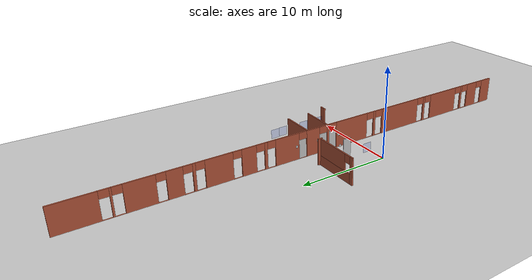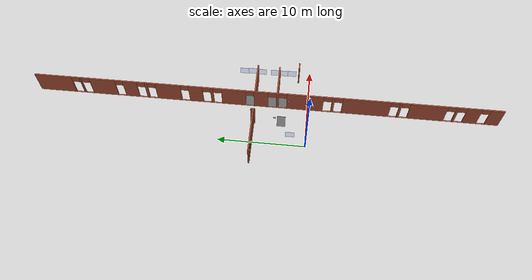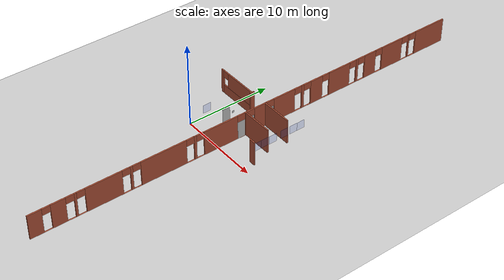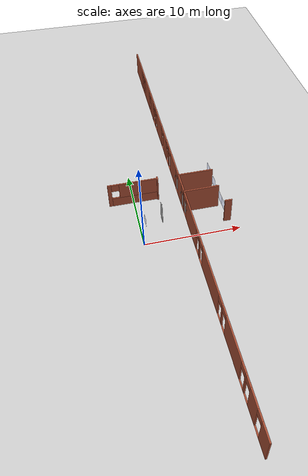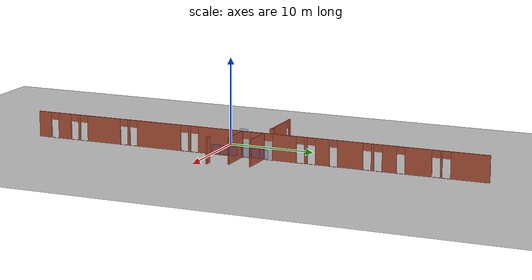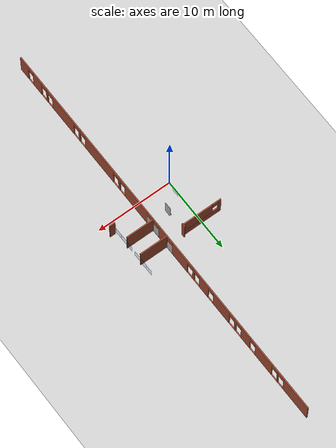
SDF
<sdf version="1.6">
 <world name="default">
  <model name="ground_plane">
   <static>1</static>
   <link name="link">
    <collision name="collision">
     <geometry><plane><normal>0 0 1</normal><size>100 100</size></plane></geometry>
     <surface><friction><ode><mu>100</mu><mu2>50</mu2></ode></friction></surface>
    </collision>
    <visual name="visual">
     <cast_shadows>0</cast_shadows>
     <geometry><plane><normal>0 0 1</normal><size>100 100</size></plane></geometry>
     <material>
      <script><uri>file://media/materials/scripts/gazebo.material</uri><name>Gazebo/Grey</name></script>
     </material>
    </visual>
   </link>
  </model>
  <model name="UNFRGS_INF_-_Predio_73">
   <pose>-0.02513 1.0401 -0.009 0 -0 0</pose>
   <link name="Wall_162">
    <pose>0.020867 5.08778 0 0 -0 0</pose>
    <visual name="Wall_162_Visual_0">
     <pose>-2.42649 0 1.48 0 -0 0</pose>
     <geometry><box><size>0.397012 0.15 2.96</size></box></geometry>
     <material>
      <script><uri>file://media/materials/scripts/gazebo.material</uri><name>Gazebo/Bricks</name></script>
      <ambient>0.929412 1 0.760784 1</ambient>
     </material>
     <meta><layer>0</layer></meta>
    </visual>
    <collision name="Wall_162_Collision_0">
     <geometry><box><size>0.397012 0.15 2.96</size></box></geometry>
     <pose>-2.42649 0 1.48 0 -0 0</pose>
    </collision>
    <visual name="Wall_162_Visual_1">
     <pose>0.198506 0 0.55 0 -0 0</pose>
     <geometry><box><size>4.85299 0.15 1.11</size></box></geometry>
     <material>
      <script><uri>file://media/materials/scripts/gazebo.material</uri><name>Gazebo/Bricks</name></script>
      <ambient>0.929412 1 0.760784 1</ambient>
     </material>
     <meta><layer>0</layer></meta>
    </visual>
    <collision name="Wall_162_Collision_1">
     <geometry><box><size>4.85299 0.15 1.11</size></box></geometry>
     <pose>0.198506 0 0.55 0 -0 0</pose>
    </collision>
    <visual name="Wall_162_Visual_2">
     <pose>0.598506 0 2.03 0 -0 0</pose>
     <geometry><box><size>4.05299 0.15 1.86</size></box></geometry>
     <material>
      <script><uri>file://media/materials/scripts/gazebo.material</uri><name>Gazebo/Bricks</name></script>
      <ambient>0.929412 1 0.760784 1</ambient>
     </material>
     <meta><layer>0</layer></meta>
    </visual>
    <collision name="Wall_162_Collision_2">
     <geometry><box><size>4.05299 0.15 1.86</size></box></geometry>
     <pose>0.598506 0 2.03 0 -0 0</pose>
    </collision>
    <visual name="Wall_162_Visual_3">
     <pose>-1.82799 0 2.53 0 -0 0</pose>
     <geometry><box><size>0.8 0.15 0.86</size></box></geometry>
     <material>
      <script><uri>file://media/materials/scripts/gazebo.material</uri><name>Gazebo/Bricks</name></script>
      <ambient>0.929412 1 0.760784 1</ambient>
     </material>
     <meta><layer>0</layer></meta>
    </visual>
    <collision name="Wall_162_Collision_3">
     <geometry><box><size>0.8 0.15 0.86</size></box></geometry>
     <pose>-1.82799 0 2.53 0 -0 0</pose>
    </collision>
   </link>
   <link name="Wall_165">
    <collision name="Wall_165_Collision">
     <geometry><box><size>3.75 0.15 2.96</size></box></geometry>
     <pose>0 0 1.48 0 -0 0</pose>
    </collision>
    <visual name="Wall_165_Visual">
     <pose>0 0 1.48 0 -0 0</pose>
     <geometry><box><size>3.75 0.15 2.96</size></box></geometry>
     <material>
      <script><uri>file://media/materials/scripts/gazebo.material</uri><name>Gazebo/Bricks</name></script>
      <ambient>0.929412 1 0.760784 1</ambient>
     </material>
     <meta><layer>0</layer></meta>
    </visual>
    <pose>6.83987 5.10678 0 0 -0 0</pose>
   </link>
   <link name="Wall_175">
    <collision name="Wall_175_Collision">
     <geometry><box><size>0.5 0.15 2.96</size></box></geometry>
     <pose>0 0 1.48 0 -0 0</pose>
    </collision>
    <visual name="Wall_175_Visual">
     <pose>0 0 1.48 0 -0 0</pose>
     <geometry><box><size>0.5 0.15 2.96</size></box></geometry>
     <material>
      <script><uri>file://media/materials/scripts/gazebo.material</uri><name>Gazebo/Bricks</name></script>
      <ambient>0.929412 1 0.760784 1</ambient>
     </material>
     <meta><layer>0</layer></meta>
    </visual>
    <pose>2.67687 5.13478 0 0 0 -1.5708</pose>
   </link>
   <link name="Wall_187">
    <collision name="Wall_187_Collision">
     <geometry><box><size>3.75 0.15 2.96</size></box></geometry>
     <pose>0 0 1.48 0 -0 0</pose>
    </collision>
    <visual name="Wall_187_Visual">
     <pose>0 0 1.48 0 -0 0</pose>
     <geometry><box><size>3.75 0.15 2.96</size></box></geometry>
     <material>
      <script><uri>file://media/materials/scripts/gazebo.material</uri><name>Gazebo/Bricks</name></script>
      <ambient>0.929412 1 0.760784 1</ambient>
     </material>
     <meta><layer>0</layer></meta>
    </visual>
    <pose>6.82687 2.55578 0 0 -0 0</pose>
   </link>
   <link name="Wall_58">
    <pose>4.98587 3.87678 0 0 0 -1.5708</pose>
    <visual name="Wall_58_Visual_0">
     <pose>-24.7349 0 1.48 0 -0 0</pose>
     <geometry><box><size>4.28017 0.15 2.96</size></box></geometry>
     <material>
      <script><uri>file://media/materials/scripts/gazebo.material</uri><name>Gazebo/Bricks</name></script>
      <ambient>0.929412 1 0.760784 1</ambient>
     </material>
     <meta><layer>0</layer></meta>
    </visual>
    <collision name="Wall_58_Collision_0">
     <geometry><box><size>4.28017 0.15 2.96</size></box></geometry>
     <pose>-24.7349 0 1.48 0 -0 0</pose>
    </collision>
    <visual name="Wall_58_Visual_1">
     <pose>-21.5568 0 1.48 0 -0 0</pose>
     <geometry><box><size>0.196028 0.15 2.96</size></box></geometry>
     <material>
      <script><uri>file://media/materials/scripts/gazebo.material</uri><name>Gazebo/Bricks</name></script>
      <ambient>0.929412 1 0.760784 1</ambient>
     </material>
     <meta><layer>0</layer></meta>
    </visual>
    <collision name="Wall_58_Collision_1">
     <geometry><box><size>0.196028 0.15 2.96</size></box></geometry>
     <pose>-21.5568 0 1.48 0 -0 0</pose>
    </collision>
    <visual name="Wall_58_Visual_2">
     <pose>-19.0277 0 1.48 0 -0 0</pose>
     <geometry><box><size>2.98229 0.15 2.96</size></box></geometry>
     <material>
      <script><uri>file://media/materials/scripts/gazebo.material</uri><name>Gazebo/Bricks</name></script>
      <ambient>0.929412 1 0.760784 1</ambient>
     </material>
     <meta><layer>0</layer></meta>
    </visual>
    <collision name="Wall_58_Collision_2">
     <geometry><box><size>2.98229 0.15 2.96</size></box></geometry>
     <pose>-19.0277 0 1.48 0 -0 0</pose>
    </collision>
    <visual name="Wall_58_Visual_3">
     <pose>-15.787 0 1.48 0 -0 0</pose>
     <geometry><box><size>1.61905 0.15 2.96</size></box></geometry>
     <material>
      <script><uri>file://media/materials/scripts/gazebo.material</uri><name>Gazebo/Bricks</name></script>
      <ambient>0.929412 1 0.760784 1</ambient>
     </material>
     <meta><layer>0</layer></meta>
    </visual>
    <collision name="Wall_58_Collision_3">
     <geometry><box><size>1.61905 0.15 2.96</size></box></geometry>
     <pose>-15.787 0 1.48 0 -0 0</pose>
    </collision>
    <visual name="Wall_58_Visual_4">
     <pose>-13.8891 0 1.48 0 -0 0</pose>
     <geometry><box><size>0.296693 0.15 2.96</size></box></geometry>
     <material>
      <script><uri>file://media/materials/scripts/gazebo.material</uri><name>Gazebo/Bricks</name></script>
      <ambient>0.929412 1 0.760784 1</ambient>
     </material>
     <meta><layer>0</layer></meta>
    </visual>
    <collision name="Wall_58_Collision_4">
     <geometry><box><size>0.296693 0.15 2.96</size></box></geometry>
     <pose>-13.8891 0 1.48 0 -0 0</pose>
    </collision>
    <visual name="Wall_58_Visual_5">
     <pose>-11.347 0 1.48 0 -0 0</pose>
     <geometry><box><size>2.9275 0.15 2.96</size></box></geometry>
     <material>
      <script><uri>file://media/materials/scripts/gazebo.material</uri><name>Gazebo/Bricks</name></script>
      <ambient>0.929412 1 0.760784 1</ambient>
     </material>
     <meta><layer>0</layer></meta>
    </visual>
    <collision name="Wall_58_Collision_5">
     <geometry><box><size>2.9275 0.15 2.96</size></box></geometry>
     <pose>-11.347 0 1.48 0 -0 0</pose>
    </collision>
    <visual name="Wall_58_Visual_6">
     <pose>-8.13374 0 1.48 0 -0 0</pose>
     <geometry><box><size>1.61905 0.15 2.96</size></box></geometry>
     <material>
      <script><uri>file://media/materials/scripts/gazebo.material</uri><name>Gazebo/Bricks</name></script>
      <ambient>0.929412 1 0.760784 1</ambient>
     </material>
     <meta><layer>0</layer></meta>
    </visual>
    <collision name="Wall_58_Collision_6">
     <geometry><box><size>1.61905 0.15 2.96</size></box></geometry>
     <pose>-8.13374 0 1.48 0 -0 0</pose>
    </collision>
    <visual name="Wall_58_Visual_7">
     <pose>-6.22641 0 1.48 0 -0 0</pose>
     <geometry><box><size>0.31561 0.15 2.96</size></box></geometry>
     <material>
      <script><uri>file://media/materials/scripts/gazebo.material</uri><name>Gazebo/Bricks</name></script>
      <ambient>0.929412 1 0.760784 1</ambient>
     </material>
     <meta><layer>0</layer></meta>
    </visual>
    <collision name="Wall_58_Collision_7">
     <geometry><box><size>0.31561 0.15 2.96</size></box></geometry>
     <pose>-6.22641 0 1.48 0 -0 0</pose>
    </collision>
    <visual name="Wall_58_Visual_8">
     <pose>-3.72117 0 1.48 0 -0 0</pose>
     <geometry><box><size>2.81487 0.15 2.96</size></box></geometry>
     <material>
      <script><uri>file://media/materials/scripts/gazebo.material</uri><name>Gazebo/Bricks</name></script>
      <ambient>0.929412 1 0.760784 1</ambient>
     </material>
     <meta><layer>0</layer></meta>
    </visual>
    <collision name="Wall_58_Collision_8">
     <geometry><box><size>2.81487 0.15 2.96</size></box></geometry>
     <pose>-3.72117 0 1.48 0 -0 0</pose>
    </collision>
    <visual name="Wall_58_Visual_9">
     <pose>-0.558227 0 1.48 0 -0 0</pose>
     <geometry><box><size>1.63101 0.15 2.96</size></box></geometry>
     <material>
      <script><uri>file://media/materials/scripts/gazebo.material</uri><name>Gazebo/Bricks</name></script>
      <ambient>0.929412 1 0.760784 1</ambient>
     </material>
     <meta><layer>0</layer></meta>
    </visual>
    <collision name="Wall_58_Collision_9">
     <geometry><box><size>1.63101 0.15 2.96</size></box></geometry>
     <pose>-0.558227 0 1.48 0 -0 0</pose>
    </collision>
    <visual name="Wall_58_Visual_10">
     <pose>1.33715 0 1.48 0 -0 0</pose>
     <geometry><box><size>0.279736 0.15 2.96</size></box></geometry>
     <material>
      <script><uri>file://media/materials/scripts/gazebo.material</uri><name>Gazebo/Bricks</name></script>
      <ambient>0.929412 1 0.760784 1</ambient>
     </material>
     <meta><layer>0</layer></meta>
    </visual>
    <collision name="Wall_58_Collision_10">
     <geometry><box><size>0.279736 0.15 2.96</size></box></geometry>
     <pose>1.33715 0 1.48 0 -0 0</pose>
    </collision>
    <visual name="Wall_58_Visual_11">
     <pose>4.524 0 1.48 0 -0 0</pose>
     <geometry><box><size>4.21398 0.15 2.96</size></box></geometry>
     <material>
      <script><uri>file://media/materials/scripts/gazebo.material</uri><name>Gazebo/Bricks</name></script>
      <ambient>0.929412 1 0.760784 1</ambient>
     </material>
     <meta><layer>0</layer></meta>
    </visual>
    <collision name="Wall_58_Collision_11">
     <geometry><box><size>4.21398 0.15 2.96</size></box></geometry>
     <pose>4.524 0 1.48 0 -0 0</pose>
    </collision>
    <visual name="Wall_58_Visual_12">
     <pose>7.71684 0 1.48 0 -0 0</pose>
     <geometry><box><size>0.291694 0.15 2.96</size></box></geometry>
     <material>
      <script><uri>file://media/materials/scripts/gazebo.material</uri><name>Gazebo/Bricks</name></script>
      <ambient>0.929412 1 0.760784 1</ambient>
     </material>
     <meta><layer>0</layer></meta>
    </visual>
    <collision name="Wall_58_Collision_12">
     <geometry><box><size>0.291694 0.15 2.96</size></box></geometry>
     <pose>7.71684 0 1.48 0 -0 0</pose>
    </collision>
    <visual name="Wall_58_Visual_13">
     <pose>11.534 0 1.48 0 -0 0</pose>
     <geometry><box><size>5.46263 0.15 2.96</size></box></geometry>
     <material>
      <script><uri>file://media/materials/scripts/gazebo.material</uri><name>Gazebo/Bricks</name></script>
      <ambient>0.929412 1 0.760784 1</ambient>
     </material>
     <meta><layer>0</layer></meta>
    </visual>
    <collision name="Wall_58_Collision_13">
     <geometry><box><size>5.46263 0.15 2.96</size></box></geometry>
     <pose>11.534 0 1.48 0 -0 0</pose>
    </collision>
    <visual name="Wall_58_Visual_14">
     <pose>15.3342 0 1.48 0 -0 0</pose>
     <geometry><box><size>0.277777 0.15 2.96</size></box></geometry>
     <material>
      <script><uri>file://media/materials/scripts/gazebo.material</uri><name>Gazebo/Bricks</name></script>
      <ambient>0.929412 1 0.760784 1</ambient>
     </material>
     <meta><layer>0</layer></meta>
    </visual>
    <collision name="Wall_58_Collision_14">
     <geometry><box><size>0.277777 0.15 2.96</size></box></geometry>
     <pose>15.3342 0 1.48 0 -0 0</pose>
    </collision>
    <visual name="Wall_58_Visual_15">
     <pose>18.5006 0 1.48 0 -0 0</pose>
     <geometry><box><size>4.19506 0.15 2.96</size></box></geometry>
     <material>
      <script><uri>file://media/materials/scripts/gazebo.material</uri><name>Gazebo/Bricks</name></script>
      <ambient>0.929412 1 0.760784 1</ambient>
     </material>
     <meta><layer>0</layer></meta>
    </visual>
    <collision name="Wall_58_Collision_15">
     <geometry><box><size>4.19506 0.15 2.96</size></box></geometry>
     <pose>18.5006 0 1.48 0 -0 0</pose>
    </collision>
    <visual name="Wall_58_Visual_16">
     <pose>21.6685 0 1.48 0 -0 0</pose>
     <geometry><box><size>0.260678 0.15 2.96</size></box></geometry>
     <material>
      <script><uri>file://media/materials/scripts/gazebo.material</uri><name>Gazebo/Bricks</name></script>
      <ambient>0.929412 1 0.760784 1</ambient>
     </material>
     <meta><layer>0</layer></meta>
    </visual>
    <collision name="Wall_58_Collision_16">
     <geometry><box><size>0.260678 0.15 2.96</size></box></geometry>
     <pose>21.6685 0 1.48 0 -0 0</pose>
    </collision>
    <visual name="Wall_58_Visual_17">
     <pose>23.5579 0 1.48 0 -0 0</pose>
     <geometry><box><size>1.63811 0.15 2.96</size></box></geometry>
     <material>
      <script><uri>file://media/materials/scripts/gazebo.material</uri><name>Gazebo/Bricks</name></script>
      <ambient>0.929412 1 0.760784 1</ambient>
     </material>
     <meta><layer>0</layer></meta>
    </visual>
    <collision name="Wall_58_Collision_17">
     <geometry><box><size>1.63811 0.15 2.96</size></box></geometry>
     <pose>23.5579 0 1.48 0 -0 0</pose>
    </collision>
    <visual name="Wall_58_Visual_18">
     <pose>26.096 0 1.48 0 -0 0</pose>
     <geometry><box><size>1.55804 0.15 2.96</size></box></geometry>
     <material>
      <script><uri>file://media/materials/scripts/gazebo.material</uri><name>Gazebo/Bricks</name></script>
      <ambient>0.929412 1 0.760784 1</ambient>
     </material>
     <meta><layer>0</layer></meta>
    </visual>
    <collision name="Wall_58_Collision_18">
     <geometry><box><size>1.55804 0.15 2.96</size></box></geometry>
     <pose>26.096 0 1.48 0 -0 0</pose>
    </collision>
    <visual name="Wall_58_Visual_19">
     <pose>-22.1248 0 0 0 -0 0</pose>
     <geometry><box><size>0.94 0.15 0.001</size></box></geometry>
     <material>
      <script><uri>file://media/materials/scripts/gazebo.material</uri><name>Gazebo/Bricks</name></script>
      <ambient>0.929412 1 0.760784 1</ambient>
     </material>
     <meta><layer>0</layer></meta>
    </visual>
    <collision name="Wall_58_Collision_19">
     <geometry><box><size>0.94 0.15 0.001</size></box></geometry>
     <pose>-22.1248 0 0 0 -0 0</pose>
    </collision>
    <visual name="Wall_58_Visual_20">
     <pose>-20.9888 0 0 0 -0 0</pose>
     <geometry><box><size>0.94 0.15 0.001</size></box></geometry>
     <material>
      <script><uri>file://media/materials/scripts/gazebo.material</uri><name>Gazebo/Bricks</name></script>
      <ambient>0.929412 1 0.760784 1</ambient>
     </material>
     <meta><layer>0</layer></meta>
    </visual>
    <collision name="Wall_58_Collision_20">
     <geometry><box><size>0.94 0.15 0.001</size></box></geometry>
     <pose>-20.9888 0 0 0 -0 0</pose>
    </collision>
    <visual name="Wall_58_Visual_21">
     <pose>-17.0665 0 0 0 -0 0</pose>
     <geometry><box><size>0.94 0.15 0.001</size></box></geometry>
     <material>
      <script><uri>file://media/materials/scripts/gazebo.material</uri><name>Gazebo/Bricks</name></script>
      <ambient>0.929412 1 0.760784 1</ambient>
     </material>
     <meta><layer>0</layer></meta>
    </visual>
    <collision name="Wall_58_Collision_21">
     <geometry><box><size>0.94 0.15 0.001</size></box></geometry>
     <pose>-17.0665 0 0 0 -0 0</pose>
    </collision>
    <visual name="Wall_58_Visual_22">
     <pose>-14.5075 0 0 0 -0 0</pose>
     <geometry><box><size>0.94 0.15 0.001</size></box></geometry>
     <material>
      <script><uri>file://media/materials/scripts/gazebo.material</uri><name>Gazebo/Bricks</name></script>
      <ambient>0.929412 1 0.760784 1</ambient>
     </material>
     <meta><layer>0</layer></meta>
    </visual>
    <collision name="Wall_58_Collision_22">
     <geometry><box><size>0.94 0.15 0.001</size></box></geometry>
     <pose>-14.5075 0 0 0 -0 0</pose>
    </collision>
    <visual name="Wall_58_Visual_23">
     <pose>-13.2758 0 0 0 -0 0</pose>
     <geometry><box><size>0.93 0.15 0.001</size></box></geometry>
     <material>
      <script><uri>file://media/materials/scripts/gazebo.material</uri><name>Gazebo/Bricks</name></script>
      <ambient>0.929412 1 0.760784 1</ambient>
     </material>
     <meta><layer>0</layer></meta>
    </visual>
    <collision name="Wall_58_Collision_23">
     <geometry><box><size>0.93 0.15 0.001</size></box></geometry>
     <pose>-13.2758 0 0 0 -0 0</pose>
    </collision>
    <visual name="Wall_58_Visual_24">
     <pose>-9.41327 0 0 0 -0 0</pose>
     <geometry><box><size>0.94 0.15 0.001</size></box></geometry>
     <material>
      <script><uri>file://media/materials/scripts/gazebo.material</uri><name>Gazebo/Bricks</name></script>
      <ambient>0.929412 1 0.760784 1</ambient>
     </material>
     <meta><layer>0</layer></meta>
    </visual>
    <collision name="Wall_58_Collision_24">
     <geometry><box><size>0.94 0.15 0.001</size></box></geometry>
     <pose>-9.41327 0 0 0 -0 0</pose>
    </collision>
    <visual name="Wall_58_Visual_25">
     <pose>-6.85422 0 0 0 -0 0</pose>
     <geometry><box><size>0.94 0.15 0.001</size></box></geometry>
     <material>
      <script><uri>file://media/materials/scripts/gazebo.material</uri><name>Gazebo/Bricks</name></script>
      <ambient>0.929412 1 0.760784 1</ambient>
     </material>
     <meta><layer>0</layer></meta>
    </visual>
    <collision name="Wall_58_Collision_25">
     <geometry><box><size>0.94 0.15 0.001</size></box></geometry>
     <pose>-6.85422 0 0 0 -0 0</pose>
    </collision>
    <visual name="Wall_58_Visual_26">
     <pose>-5.59861 0 0 0 -0 0</pose>
     <geometry><box><size>0.94 0.15 0.001</size></box></geometry>
     <material>
      <script><uri>file://media/materials/scripts/gazebo.material</uri><name>Gazebo/Bricks</name></script>
      <ambient>0.929412 1 0.760784 1</ambient>
     </material>
     <meta><layer>0</layer></meta>
    </visual>
    <collision name="Wall_58_Collision_26">
     <geometry><box><size>0.94 0.15 0.001</size></box></geometry>
     <pose>-5.59861 0 0 0 -0 0</pose>
    </collision>
    <visual name="Wall_58_Visual_27">
     <pose>-1.84373 0 0 0 -0 0</pose>
     <geometry><box><size>0.94 0.15 0.001</size></box></geometry>
     <material>
      <script><uri>file://media/materials/scripts/gazebo.material</uri><name>Gazebo/Bricks</name></script>
      <ambient>0.929412 1 0.760784 1</ambient>
     </material>
     <meta><layer>0</layer></meta>
    </visual>
    <collision name="Wall_58_Collision_27">
     <geometry><box><size>0.94 0.15 0.001</size></box></geometry>
     <pose>-1.84373 0 0 0 -0 0</pose>
    </collision>
    <visual name="Wall_58_Visual_28">
     <pose>0.727278 0 0 0 -0 0</pose>
     <geometry><box><size>0.94 0.15 0.001</size></box></geometry>
     <material>
      <script><uri>file://media/materials/scripts/gazebo.material</uri><name>Gazebo/Bricks</name></script>
      <ambient>0.929412 1 0.760784 1</ambient>
     </material>
     <meta><layer>0</layer></meta>
    </visual>
    <collision name="Wall_58_Collision_28">
     <geometry><box><size>0.94 0.15 0.001</size></box></geometry>
     <pose>0.727278 0 0 0 -0 0</pose>
    </collision>
    <visual name="Wall_58_Visual_29">
     <pose>1.94701 0 0 0 -0 0</pose>
     <geometry><box><size>0.94 0.15 0.001</size></box></geometry>
     <material>
      <script><uri>file://media/materials/scripts/gazebo.material</uri><name>Gazebo/Bricks</name></script>
      <ambient>0.929412 1 0.760784 1</ambient>
     </material>
     <meta><layer>0</layer></meta>
    </visual>
    <collision name="Wall_58_Collision_29">
     <geometry><box><size>0.94 0.15 0.001</size></box></geometry>
     <pose>1.94701 0 0 0 -0 0</pose>
    </collision>
    <visual name="Wall_58_Visual_30">
     <pose>7.101 0 0 0 -0 0</pose>
     <geometry><box><size>0.94 0.15 0.001</size></box></geometry>
     <material>
      <script><uri>file://media/materials/scripts/gazebo.material</uri><name>Gazebo/Bricks</name></script>
      <ambient>0.929412 1 0.760784 1</ambient>
     </material>
     <meta><layer>0</layer></meta>
    </visual>
    <collision name="Wall_58_Collision_30">
     <geometry><box><size>0.94 0.15 0.001</size></box></geometry>
     <pose>7.101 0 0 0 -0 0</pose>
    </collision>
    <visual name="Wall_58_Visual_31">
     <pose>8.33269 0 0 0 -0 0</pose>
     <geometry><box><size>0.94 0.15 0.001</size></box></geometry>
     <material>
      <script><uri>file://media/materials/scripts/gazebo.material</uri><name>Gazebo/Bricks</name></script>
      <ambient>0.929412 1 0.760784 1</ambient>
     </material>
     <meta><layer>0</layer></meta>
    </visual>
    <collision name="Wall_58_Collision_31">
     <geometry><box><size>0.94 0.15 0.001</size></box></geometry>
     <pose>8.33269 0 0 0 -0 0</pose>
    </collision>
    <visual name="Wall_58_Visual_32">
     <pose>14.7303 0 0 0 -0 0</pose>
     <geometry><box><size>0.93 0.15 0.001</size></box></geometry>
     <material>
      <script><uri>file://media/materials/scripts/gazebo.material</uri><name>Gazebo/Bricks</name></script>
      <ambient>0.929412 1 0.760784 1</ambient>
     </material>
     <meta><layer>0</layer></meta>
    </visual>
    <collision name="Wall_58_Collision_32">
     <geometry><box><size>0.93 0.15 0.001</size></box></geometry>
     <pose>14.7303 0 0 0 -0 0</pose>
    </collision>
    <visual name="Wall_58_Visual_33">
     <pose>15.9381 0 0 0 -0 0</pose>
     <geometry><box><size>0.93 0.15 0.001</size></box></geometry>
     <material>
      <script><uri>file://media/materials/scripts/gazebo.material</uri><name>Gazebo/Bricks</name></script>
      <ambient>0.929412 1 0.760784 1</ambient>
     </material>
     <meta><layer>0</layer></meta>
    </visual>
    <collision name="Wall_58_Collision_33">
     <geometry><box><size>0.93 0.15 0.001</size></box></geometry>
     <pose>15.9381 0 0 0 -0 0</pose>
    </collision>
    <visual name="Wall_58_Visual_34">
     <pose>21.0682 0 0 0 -0 0</pose>
     <geometry><box><size>0.94 0.15 0.001</size></box></geometry>
     <material>
      <script><uri>file://media/materials/scripts/gazebo.material</uri><name>Gazebo/Bricks</name></script>
      <ambient>0.929412 1 0.760784 1</ambient>
     </material>
     <meta><layer>0</layer></meta>
    </visual>
    <collision name="Wall_58_Collision_34">
     <geometry><box><size>0.94 0.15 0.001</size></box></geometry>
     <pose>21.0682 0 0 0 -0 0</pose>
    </collision>
    <visual name="Wall_58_Visual_35">
     <pose>22.2688 0 0 0 -0 0</pose>
     <geometry><box><size>0.94 0.15 0.001</size></box></geometry>
     <material>
      <script><uri>file://media/materials/scripts/gazebo.material</uri><name>Gazebo/Bricks</name></script>
      <ambient>0.929412 1 0.760784 1</ambient>
     </material>
     <meta><layer>0</layer></meta>
    </visual>
    <collision name="Wall_58_Collision_35">
     <geometry><box><size>0.94 0.15 0.001</size></box></geometry>
     <pose>22.2688 0 0 0 -0 0</pose>
    </collision>
    <visual name="Wall_58_Visual_36">
     <pose>24.847 0 0 0 -0 0</pose>
     <geometry><box><size>0.94 0.15 0.001</size></box></geometry>
     <material>
      <script><uri>file://media/materials/scripts/gazebo.material</uri><name>Gazebo/Bricks</name></script>
      <ambient>0.929412 1 0.760784 1</ambient>
     </material>
     <meta><layer>0</layer></meta>
    </visual>
    <collision name="Wall_58_Collision_36">
     <geometry><box><size>0.94 0.15 0.001</size></box></geometry>
     <pose>24.847 0 0 0 -0 0</pose>
    </collision>
    <visual name="Wall_58_Visual_37">
     <pose>-22.1248 0 2.555 0 -0 0</pose>
     <geometry><box><size>0.94 0.15 0.81</size></box></geometry>
     <material>
      <script><uri>file://media/materials/scripts/gazebo.material</uri><name>Gazebo/Bricks</name></script>
      <ambient>0.929412 1 0.760784 1</ambient>
     </material>
     <meta><layer>0</layer></meta>
    </visual>
    <collision name="Wall_58_Collision_37">
     <geometry><box><size>0.94 0.15 0.81</size></box></geometry>
     <pose>-22.1248 0 2.555 0 -0 0</pose>
    </collision>
    <visual name="Wall_58_Visual_38">
     <pose>-20.9888 0 2.555 0 -0 0</pose>
     <geometry><box><size>0.94 0.15 0.81</size></box></geometry>
     <material>
      <script><uri>file://media/materials/scripts/gazebo.material</uri><name>Gazebo/Bricks</name></script>
      <ambient>0.929412 1 0.760784 1</ambient>
     </material>
     <meta><layer>0</layer></meta>
    </visual>
    <collision name="Wall_58_Collision_38">
     <geometry><box><size>0.94 0.15 0.81</size></box></geometry>
     <pose>-20.9888 0 2.555 0 -0 0</pose>
    </collision>
    <visual name="Wall_58_Visual_39">
     <pose>-17.0665 0 2.555 0 -0 0</pose>
     <geometry><box><size>0.94 0.15 0.81</size></box></geometry>
     <material>
      <script><uri>file://media/materials/scripts/gazebo.material</uri><name>Gazebo/Bricks</name></script>
      <ambient>0.929412 1 0.760784 1</ambient>
     </material>
     <meta><layer>0</layer></meta>
    </visual>
    <collision name="Wall_58_Collision_39">
     <geometry><box><size>0.94 0.15 0.81</size></box></geometry>
     <pose>-17.0665 0 2.555 0 -0 0</pose>
    </collision>
    <visual name="Wall_58_Visual_40">
     <pose>-14.5075 0 2.555 0 -0 0</pose>
     <geometry><box><size>0.94 0.15 0.81</size></box></geometry>
     <material>
      <script><uri>file://media/materials/scripts/gazebo.material</uri><name>Gazebo/Bricks</name></script>
      <ambient>0.929412 1 0.760784 1</ambient>
     </material>
     <meta><layer>0</layer></meta>
    </visual>
    <collision name="Wall_58_Collision_40">
     <geometry><box><size>0.94 0.15 0.81</size></box></geometry>
     <pose>-14.5075 0 2.555 0 -0 0</pose>
    </collision>
    <visual name="Wall_58_Visual_41">
     <pose>-13.2758 0 2.555 0 -0 0</pose>
     <geometry><box><size>0.93 0.15 0.81</size></box></geometry>
     <material>
      <script><uri>file://media/materials/scripts/gazebo.material</uri><name>Gazebo/Bricks</name></script>
      <ambient>0.929412 1 0.760784 1</ambient>
     </material>
     <meta><layer>0</layer></meta>
    </visual>
    <collision name="Wall_58_Collision_41">
     <geometry><box><size>0.93 0.15 0.81</size></box></geometry>
     <pose>-13.2758 0 2.555 0 -0 0</pose>
    </collision>
    <visual name="Wall_58_Visual_42">
     <pose>-9.41327 0 2.555 0 -0 0</pose>
     <geometry><box><size>0.94 0.15 0.81</size></box></geometry>
     <material>
      <script><uri>file://media/materials/scripts/gazebo.material</uri><name>Gazebo/Bricks</name></script>
      <ambient>0.929412 1 0.760784 1</ambient>
     </material>
     <meta><layer>0</layer></meta>
    </visual>
    <collision name="Wall_58_Collision_42">
     <geometry><box><size>0.94 0.15 0.81</size></box></geometry>
     <pose>-9.41327 0 2.555 0 -0 0</pose>
    </collision>
    <visual name="Wall_58_Visual_43">
     <pose>-6.85422 0 2.555 0 -0 0</pose>
     <geometry><box><size>0.94 0.15 0.81</size></box></geometry>
     <material>
      <script><uri>file://media/materials/scripts/gazebo.material</uri><name>Gazebo/Bricks</name></script>
      <ambient>0.929412 1 0.760784 1</ambient>
     </material>
     <meta><layer>0</layer></meta>
    </visual>
    <collision name="Wall_58_Collision_43">
     <geometry><box><size>0.94 0.15 0.81</size></box></geometry>
     <pose>-6.85422 0 2.555 0 -0 0</pose>
    </collision>
    <visual name="Wall_58_Visual_44">
     <pose>-5.59861 0 2.555 0 -0 0</pose>
     <geometry><box><size>0.94 0.15 0.81</size></box></geometry>
     <material>
      <script><uri>file://media/materials/scripts/gazebo.material</uri><name>Gazebo/Bricks</name></script>
      <ambient>0.929412 1 0.760784 1</ambient>
     </material>
     <meta><layer>0</layer></meta>
    </visual>
    <collision name="Wall_58_Collision_44">
     <geometry><box><size>0.94 0.15 0.81</size></box></geometry>
     <pose>-5.59861 0 2.555 0 -0 0</pose>
    </collision>
    <visual name="Wall_58_Visual_45">
     <pose>-1.84373 0 2.555 0 -0 0</pose>
     <geometry><box><size>0.94 0.15 0.81</size></box></geometry>
     <material>
      <script><uri>file://media/materials/scripts/gazebo.material</uri><name>Gazebo/Bricks</name></script>
      <ambient>0.929412 1 0.760784 1</ambient>
     </material>
     <meta><layer>0</layer></meta>
    </visual>
    <collision name="Wall_58_Collision_45">
     <geometry><box><size>0.94 0.15 0.81</size></box></geometry>
     <pose>-1.84373 0 2.555 0 -0 0</pose>
    </collision>
    <visual name="Wall_58_Visual_46">
     <pose>0.727278 0 2.555 0 -0 0</pose>
     <geometry><box><size>0.94 0.15 0.81</size></box></geometry>
     <material>
      <script><uri>file://media/materials/scripts/gazebo.material</uri><name>Gazebo/Bricks</name></script>
      <ambient>0.929412 1 0.760784 1</ambient>
     </material>
     <meta><layer>0</layer></meta>
    </visual>
    <collision name="Wall_58_Collision_46">
     <geometry><box><size>0.94 0.15 0.81</size></box></geometry>
     <pose>0.727278 0 2.555 0 -0 0</pose>
    </collision>
    <visual name="Wall_58_Visual_47">
     <pose>1.94701 0 2.555 0 -0 0</pose>
     <geometry><box><size>0.94 0.15 0.81</size></box></geometry>
     <material>
      <script><uri>file://media/materials/scripts/gazebo.material</uri><name>Gazebo/Bricks</name></script>
      <ambient>0.929412 1 0.760784 1</ambient>
     </material>
     <meta><layer>0</layer></meta>
    </visual>
    <collision name="Wall_58_Collision_47">
     <geometry><box><size>0.94 0.15 0.81</size></box></geometry>
     <pose>1.94701 0 2.555 0 -0 0</pose>
    </collision>
    <visual name="Wall_58_Visual_48">
     <pose>7.101 0 2.555 0 -0 0</pose>
     <geometry><box><size>0.94 0.15 0.81</size></box></geometry>
     <material>
      <script><uri>file://media/materials/scripts/gazebo.material</uri><name>Gazebo/Bricks</name></script>
      <ambient>0.929412 1 0.760784 1</ambient>
     </material>
     <meta><layer>0</layer></meta>
    </visual>
    <collision name="Wall_58_Collision_48">
     <geometry><box><size>0.94 0.15 0.81</size></box></geometry>
     <pose>7.101 0 2.555 0 -0 0</pose>
    </collision>
    <visual name="Wall_58_Visual_49">
     <pose>8.33269 0 2.555 0 -0 0</pose>
     <geometry><box><size>0.94 0.15 0.81</size></box></geometry>
     <material>
      <script><uri>file://media/materials/scripts/gazebo.material</uri><name>Gazebo/Bricks</name></script>
      <ambient>0.929412 1 0.760784 1</ambient>
     </material>
     <meta><layer>0</layer></meta>
    </visual>
    <collision name="Wall_58_Collision_49">
     <geometry><box><size>0.94 0.15 0.81</size></box></geometry>
     <pose>8.33269 0 2.555 0 -0 0</pose>
    </collision>
    <visual name="Wall_58_Visual_50">
     <pose>14.7303 0 2.555 0 -0 0</pose>
     <geometry><box><size>0.93 0.15 0.81</size></box></geometry>
     <material>
      <script><uri>file://media/materials/scripts/gazebo.material</uri><name>Gazebo/Bricks</name></script>
      <ambient>0.929412 1 0.760784 1</ambient>
     </material>
     <meta><layer>0</layer></meta>
    </visual>
    <collision name="Wall_58_Collision_50">
     <geometry><box><size>0.93 0.15 0.81</size></box></geometry>
     <pose>14.7303 0 2.555 0 -0 0</pose>
    </collision>
    <visual name="Wall_58_Visual_51">
     <pose>15.9381 0 2.555 0 -0 0</pose>
     <geometry><box><size>0.93 0.15 0.81</size></box></geometry>
     <material>
      <script><uri>file://media/materials/scripts/gazebo.material</uri><name>Gazebo/Bricks</name></script>
      <ambient>0.929412 1 0.760784 1</ambient>
     </material>
     <meta><layer>0</layer></meta>
    </visual>
    <collision name="Wall_58_Collision_51">
     <geometry><box><size>0.93 0.15 0.81</size></box></geometry>
     <pose>15.9381 0 2.555 0 -0 0</pose>
    </collision>
    <visual name="Wall_58_Visual_52">
     <pose>21.0682 0 2.555 0 -0 0</pose>
     <geometry><box><size>0.94 0.15 0.81</size></box></geometry>
     <material>
      <script><uri>file://media/materials/scripts/gazebo.material</uri><name>Gazebo/Bricks</name></script>
      <ambient>0.929412 1 0.760784 1</ambient>
     </material>
     <meta><layer>0</layer></meta>
    </visual>
    <collision name="Wall_58_Collision_52">
     <geometry><box><size>0.94 0.15 0.81</size></box></geometry>
     <pose>21.0682 0 2.555 0 -0 0</pose>
    </collision>
    <visual name="Wall_58_Visual_53">
     <pose>22.2688 0 2.555 0 -0 0</pose>
     <geometry><box><size>0.94 0.15 0.81</size></box></geometry>
     <material>
      <script><uri>file://media/materials/scripts/gazebo.material</uri><name>Gazebo/Bricks</name></script>
      <ambient>0.929412 1 0.760784 1</ambient>
     </material>
     <meta><layer>0</layer></meta>
    </visual>
    <collision name="Wall_58_Collision_53">
     <geometry><box><size>0.94 0.15 0.81</size></box></geometry>
     <pose>22.2688 0 2.555 0 -0 0</pose>
    </collision>
    <visual name="Wall_58_Visual_54">
     <pose>24.847 0 2.555 0 -0 0</pose>
     <geometry><box><size>0.94 0.15 0.81</size></box></geometry>
     <material>
      <script><uri>file://media/materials/scripts/gazebo.material</uri><name>Gazebo/Bricks</name></script>
      <ambient>0.929412 1 0.760784 1</ambient>
     </material>
     <meta><layer>0</layer></meta>
    </visual>
    <collision name="Wall_58_Collision_54">
     <geometry><box><size>0.94 0.15 0.81</size></box></geometry>
     <pose>24.847 0 2.555 0 -0 0</pose>
    </collision>
   </link>
   <link name="Wall_696">
    <collision name="Wall_696_Collision">
     <geometry><box><size>0.75 0.15 2.96</size></box></geometry>
     <pose>0 0 1.48 0 -0 0</pose>
    </collision>
    <visual name="Wall_696_Visual">
     <pose>0 0 1.48 0 -0 0</pose>
     <geometry><box><size>0.75 0.15 2.96</size></box></geometry>
     <material>
      <script><uri>file://media/materials/scripts/gazebo.material</uri><name>Gazebo/Bricks</name></script>
      <ambient>0.498039 0.498039 0.498039 1</ambient>
     </material>
     <meta><layer>0</layer></meta>
    </visual>
    <pose>9.04987 0.289781 0 0 -0 0</pose>
   </link>
   <static>1</static>
  </model>
  <model name="placa_221">
   <pose>4.88 7.5004 1.48209 0 -0 1.57</pose>
   <static>1</static>
   <link name="link">
    <collision name="collision"><geometry><box><size>0.268 0.001 0.268</size></box></geometry></collision>
    <visual name="visual">
     <geometry><box><size>0.268 0.001 0.268</size></box></geometry>
     <material>
      <script>
       <uri>model://Placa_221/Materials/Scripts</uri>
       <uri>model://Placa_221/Materials/Textures</uri>
       <name>TexturaPlaca_221/Image</name>
      </script>
     </material>
    </visual>
   </link>
  </model>
  <model name="placa_223">
   <pose>4.88 4.9 1.48209 0 -0 1.57</pose>
   <static>1</static>
   <link name="link">
    <collision name="collision"><geometry><box><size>0.268 0.001 0.268</size></box></geometry></collision>
    <visual name="visual">
     <geometry><box><size>0.268 0.001 0.268</size></box></geometry>
     <material>
      <script>
       <uri>model://Placa_223/Materials/Scripts</uri>
       <uri>model://Placa_223/Materials/Textures</uri>
       <name>TexturaPlaca_223/Image</name>
      </script>
     </material>
    </visual>
   </link>
  </model>
  <model name="placa_225">
   <pose>2.6 3.7 1.48209 0 -0 1.57</pose>
   <static>1</static>
   <link name="link">
    <collision name="collision"><geometry><box><size>0.268 0.001 0.268</size></box></geometry></collision>
    <visual name="visual">
     <geometry><box><size>0.268 0.001 0.268</size></box></geometry>
     <material>
      <script>
       <uri>model://Placa_225/Materials/Scripts</uri>
       <uri>model://Placa_225/Materials/Textures</uri>
       <name>TexturaPlaca_225/Image</name>
      </script>
     </material>
    </visual>
   </link>
  </model>
  <model name="placa_227">
   <pose>4.88 2.2 1.48209 0 -0 1.57</pose>
   <static>1</static>
   <link name="link">
    <collision name="collision"><geometry><box><size>0.268 0.001 0.268</size></box></geometry></collision>
    <visual name="visual">
     <geometry><box><size>0.268 0.001 0.268</size></box></geometry>
     <material>
      <script>
       <uri>model://Placa_227/Materials/Scripts</uri>
       <uri>model://Placa_227/Materials/Textures</uri>
       <name>TexturaPlaca_227/Image</name>
      </script>
     </material>
    </visual>
   </link>
  </model>
  <model name="PortaInternaDireita_12">
   <pose>5 2.97 1.075 0 -0 1.57</pose>
   <static>1</static>
   <link name="link">
    <collision name="collision"><geometry><box><size>2.15 3.5 0.94</size></box></geometry></collision>
    <visual name="visual">
     <geometry><box><size>0.94 0.035 2.15</size></box></geometry>
     <material>
      <script>
       <uri>model://PortaInternaDireita/materials/scripts</uri>
       <uri>model://PortaInternaDireita/materials/textures</uri>
       <name>TexturaPortaInternaDireita/Image</name>
      </script>
     </material>
    </visual>
   </link>
  </model>
  <model name="PortaInternaEsquerda_15">
   <pose>5 4.2 1.075 0 -0 1.57</pose>
   <static>1</static>
   <link name="link">
    <collision name="collision"><geometry><box><size>2.15 3.5 0.94</size></box></geometry></collision>
    <visual name="visual">
     <geometry><box><size>0.94 0.035 2.15</size></box></geometry>
     <material>
      <script>
       <uri>model://PortaInternaEsquerda/materials/scripts</uri>
       <uri>model://PortaInternaEsquerda/materials/textures</uri>
       <name>TexturaPortaInternaEsquerda/Image</name>
      </script>
     </material>
    </visual>
   </link>
  </model>
  <model name="PortaInternaEsquerda_16">
   <pose>5 6.77 1.075 0 -0 1.57</pose>
   <static>1</static>
   <link name="link">
    <collision name="collision"><geometry><box><size>2.15 3.5 0.94</size></box></geometry></collision>
    <visual name="visual">
     <geometry><box><size>0.94 0.035 2.15</size></box></geometry>
     <material>
      <script>
       <uri>model://PortaInternaEsquerda/materials/scripts</uri>
       <uri>model://PortaInternaEsquerda/materials/textures</uri>
       <name>TexturaPortaInternaEsquerda/Image</name>
      </script>
     </material>
    </visual>
   </link>
  </model>
  <model name="PortaInternaDireita_21">
   <pose>2.43 2.93 1.075 0 -0 1.57</pose>
   <static>1</static>
   <link name="link">
    <collision name="collision"><geometry><box><size>2.15 3.5 0.94</size></box></geometry></collision>
    <visual name="visual">
     <geometry><box><size>0.94 0.035 2.15</size></box></geometry>
     <material>
      <script>
       <uri>model://PortaInternaDireita/materials/scripts</uri>
       <uri>model://PortaInternaDireita/materials/textures</uri>
       <name>TexturaPortaInternaDireita/Image</name>
      </script>
     </material>
    </visual>
   </link>
  </model>
  <model name="vidro_25">
   <pose>8.76298 2.15716 0.360921 0 0 -1.55</pose>
   <link name="Wall_2">
    <collision name="Wall_2_Collision">
     <geometry><box><size>1 0.001 1</size></box></geometry>
     <pose>0 0 1.25 0 -0 0</pose>
    </collision>
    <visual name="Wall_2_Visual">
     <pose>0 0 1.25 0 -0 0</pose>
     <transparency>0.8</transparency>
     <geometry><box><size>1 0.001 1</size></box></geometry>
     <material>
      <script><uri>file://media/materials/scripts/gazebo.material</uri><name>Gazebo/BlueTransparent</name></script>
      <ambient>0.1 0.1 0.1 0.1</ambient>
     </material>
     <meta><layer>0</layer></meta>
    </visual>
    <pose>0 0 0 0 -0 3.14159</pose>
   </link>
   <static>1</static>
  </model>
  <model name="vidro_26">
   <pose>8.74424 3.16328 0.3484 0 0 -1.55</pose>
   <link name="Wall_2">
    <collision name="Wall_2_Collision">
     <geometry><box><size>1 0.001 1</size></box></geometry>
     <pose>0 0 1.25 0 -0 0</pose>
    </collision>
    <visual name="Wall_2_Visual">
     <pose>0 0 1.25 0 -0 0</pose>
     <transparency>0.8</transparency>
     <geometry><box><size>1 0.001 1</size></box></geometry>
     <material>
      <script><uri>file://media/materials/scripts/gazebo.material</uri><name>Gazebo/BlueTransparent</name></script>
      <ambient>0.1 0.1 0.1 0.1</ambient>
     </material>
     <meta><layer>0</layer></meta>
    </visual>
    <pose>0 0 0 0 -0 3.14159</pose>
   </link>
   <static>1</static>
  </model>
  <model name="vidro_27">
   <pose>8.7485 4.16079 0.343325 0 0 -1.55</pose>
   <link name="Wall_2">
    <collision name="Wall_2_Collision">
     <geometry><box><size>1 0.001 1</size></box></geometry>
     <pose>0 0 1.25 0 -0 0</pose>
    </collision>
    <visual name="Wall_2_Visual">
     <pose>0 0 1.25 0 -0 0</pose>
     <transparency>0.8</transparency>
     <geometry><box><size>1 0.001 1</size></box></geometry>
     <material>
      <script><uri>file://media/materials/scripts/gazebo.material</uri><name>Gazebo/BlueTransparent</name></script>
      <ambient>0.1 0.1 0.1 0.1</ambient>
     </material>
     <meta><layer>0</layer></meta>
    </visual>
    <pose>0 0 0 0 -0 3.14159</pose>
   </link>
   <static>1</static>
  </model>
  <model name="vidro_28">
   <pose>8.74479 5.66296 0.337607 0 0 -1.55</pose>
   <link name="Wall_2">
    <collision name="Wall_2_Collision">
     <geometry><box><size>1 0.001 1</size></box></geometry>
     <pose>0 0 1.25 0 -0 0</pose>
    </collision>
    <visual name="Wall_2_Visual">
     <pose>0 0 1.25 0 -0 0</pose>
     <transparency>0.8</transparency>
     <geometry><box><size>1 0.001 1</size></box></geometry>
     <material>
      <script><uri>file://media/materials/scripts/gazebo.material</uri><name>Gazebo/BlueTransparent</name></script>
      <ambient>0.1 0.1 0.1 0.1</ambient>
     </material>
     <meta><layer>0</layer></meta>
    </visual>
    <pose>0 0 0 0 -0 3.14159</pose>
   </link>
   <static>1</static>
  </model>
  <model name="vidro_29">
   <pose>8.75954 6.83123 0.372038 0 0 -1.55</pose>
   <link name="Wall_2">
    <collision name="Wall_2_Collision">
     <geometry><box><size>1 0.001 1</size></box></geometry>
     <pose>0 0 1.25 0 -0 0</pose>
    </collision>
    <visual name="Wall_2_Visual">
     <pose>0 0 1.25 0 -0 0</pose>
     <transparency>0.8</transparency>
     <geometry><box><size>1 0.001 1</size></box></geometry>
     <material>
      <script><uri>file://media/materials/scripts/gazebo.material</uri><name>Gazebo/BlueTransparent</name></script>
      <ambient>0.1 0.1 0.1 0.1</ambient>
     </material>
     <meta><layer>0</layer></meta>
    </visual>
    <pose>0 0 0 0 -0 3.14159</pose>
   </link>
   <static>1</static>
  </model>
  <model name="vidro_30">
   <pose>8.73892 7.79807 0.337328 0 0 -1.55</pose>
   <link name="Wall_2">
    <collision name="Wall_2_Collision">
     <geometry><box><size>1 0.001 1</size></box></geometry>
     <pose>0 0 1.25 0 -0 0</pose>
    </collision>
    <visual name="Wall_2_Visual">
     <pose>0 0 1.25 0 -0 0</pose>
     <transparency>0.8</transparency>
     <geometry><box><size>1 0.001 1</size></box></geometry>
     <material>
      <script><uri>file://media/materials/scripts/gazebo.material</uri><name>Gazebo/BlueTransparent</name></script>
      <ambient>0.1 0.1 0.1 0.1</ambient>
     </material>
     <meta><layer>0</layer></meta>
    </visual>
    <pose>0 0 0 0 -0 3.14159</pose>
   </link>
   <static>1</static>
  </model>
  <model name="vidro_76_clone_1">
   <pose>0.517924 1.82074 0.345445 0 0 -1.55</pose>
   <link name="Wall_2">
    <collision name="Wall_2_Collision">
     <geometry><box><size>1 0.001 1</size></box></geometry>
     <pose>0 0 1.25 0 -0 0</pose>
    </collision>
    <visual name="Wall_2_Visual">
     <pose>0 0 1.25 0 -0 0</pose>
     <transparency>0.8</transparency>
     <geometry><box><size>1 0.001 1</size></box></geometry>
     <material>
      <script><uri>file://media/materials/scripts/gazebo.material</uri><name>Gazebo/BlueTransparent</name></script>
      <ambient>0.1 0.1 0.1 0.1</ambient>
     </material>
     <meta><layer>0</layer></meta>
    </visual>
    <pose>0 0 0 0 -0 3.14159</pose>
   </link>
   <static>1</static>
  </model>
 </world>
</sdf>
